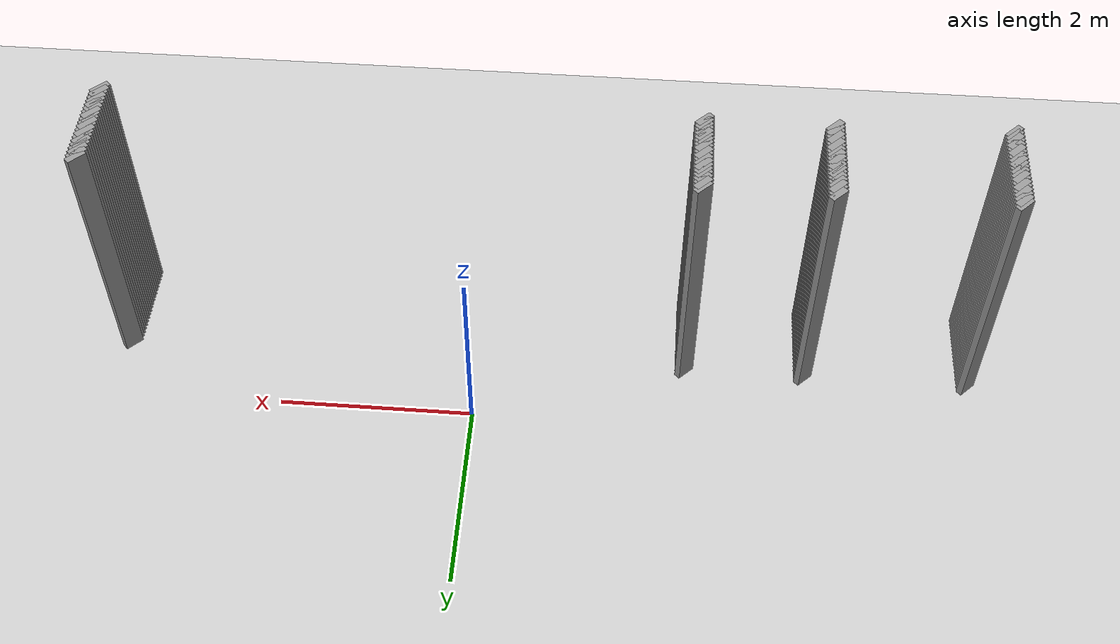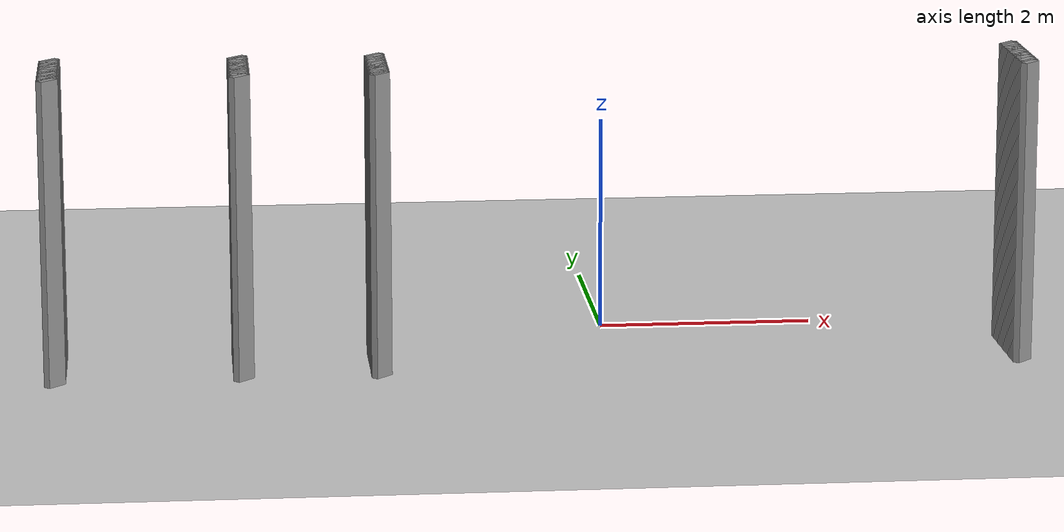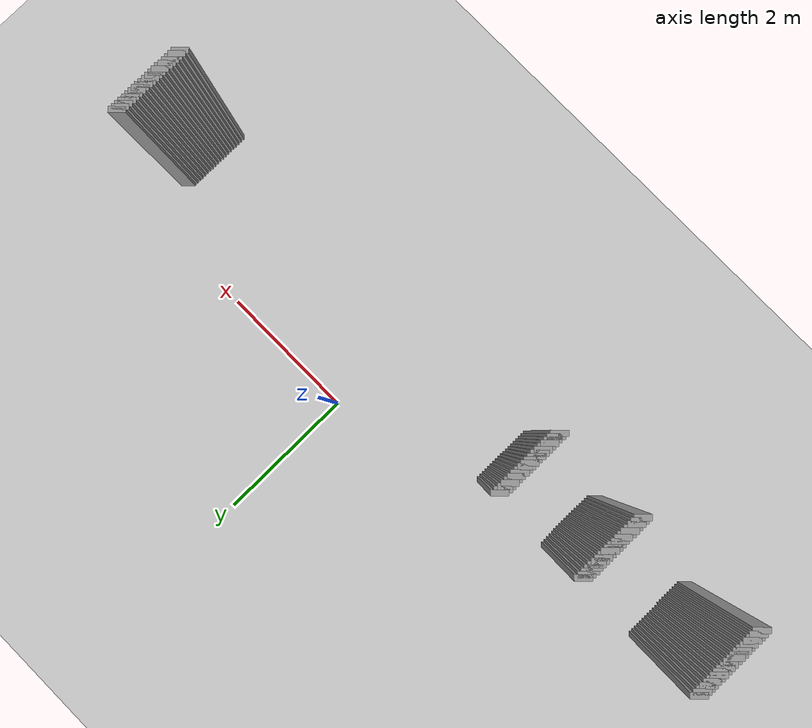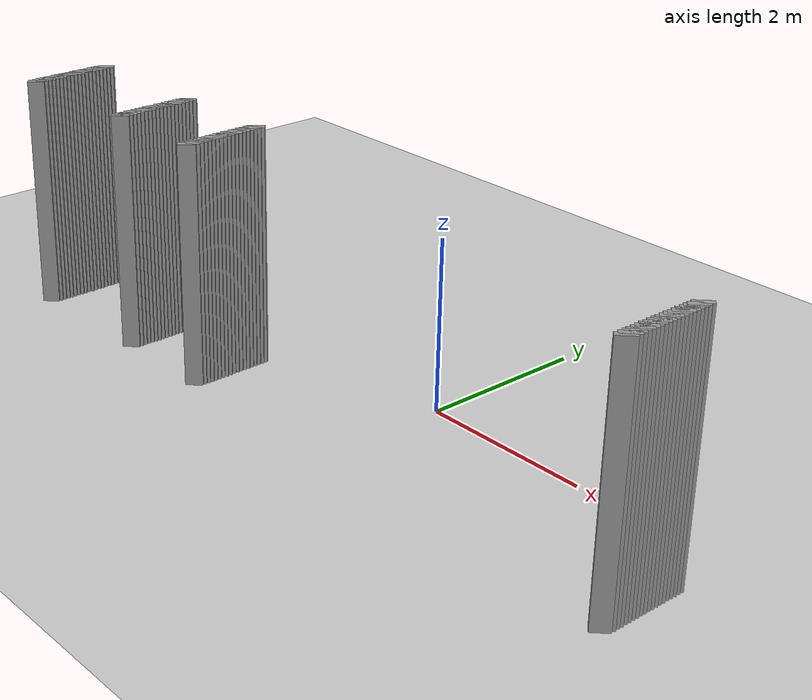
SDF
<sdf version="1.5">
 <world name="default">
  <include><uri>model://ground_plane</uri></include>
  <include><uri>model://sun</uri></include>
  <model name="grey_wall_944">
   <static>1</static>
   <link name="link">
    <pose>3.725 -0.675  1.4 0 0 -0.785398163397</pose>
    <collision name="collision"><geometry><box><size>0.0707106781187 .2  2.8</size></box></geometry></collision>
    <visual name="visual">
     <cast_shadows>0</cast_shadows>
     <geometry><box><size>0.0707106781187 .2  2.8</size></box></geometry>
     <material>
      <script>
       <uri>model://grey_wall/materials/scripts</uri>
       <uri>model://grey_wall/materials/textures</uri>
       <name>vrc/grey_wall</name>
      </script>
     </material>
    </visual>
   </link>
  </model>
  <model name="grey_wall_945">
   <static>1</static>
   <link name="link">
    <pose>-5.125 -0.725  1.4 0 0 -0.785398163397</pose>
    <collision name="collision"><geometry><box><size>0.0707106781187 .2  2.8</size></box></geometry></collision>
    <visual name="visual">
     <cast_shadows>0</cast_shadows>
     <geometry><box><size>0.0707106781187 .2  2.8</size></box></geometry>
     <material>
      <script>
       <uri>model://grey_wall/materials/scripts</uri>
       <uri>model://grey_wall/materials/textures</uri>
       <name>vrc/grey_wall</name>
      </script>
     </material>
    </visual>
   </link>
  </model>
  <model name="grey_wall_946">
   <static>1</static>
   <link name="link">
    <pose>-3.425 -0.725  1.4 0 0 -0.785398163397</pose>
    <collision name="collision"><geometry><box><size>0.0707106781187 .2  2.8</size></box></geometry></collision>
    <visual name="visual">
     <cast_shadows>0</cast_shadows>
     <geometry><box><size>0.0707106781187 .2  2.8</size></box></geometry>
     <material>
      <script>
       <uri>model://grey_wall/materials/scripts</uri>
       <uri>model://grey_wall/materials/textures</uri>
       <name>vrc/grey_wall</name>
      </script>
     </material>
    </visual>
   </link>
  </model>
  <model name="grey_wall_947">
   <static>1</static>
   <link name="link">
    <pose>-2.175 -0.725  1.4 0 0 -0.785398163397</pose>
    <collision name="collision"><geometry><box><size>0.0707106781187 .2  2.8</size></box></geometry></collision>
    <visual name="visual">
     <cast_shadows>0</cast_shadows>
     <geometry><box><size>0.0707106781187 .2  2.8</size></box></geometry>
     <material>
      <script>
       <uri>model://grey_wall/materials/scripts</uri>
       <uri>model://grey_wall/materials/textures</uri>
       <name>vrc/grey_wall</name>
      </script>
     </material>
    </visual>
   </link>
  </model>
  <model name="grey_wall_948">
   <static>1</static>
   <link name="link">
    <pose>3.725 -0.725  1.4 0 0 -0.785398163397</pose>
    <collision name="collision"><geometry><box><size>0.0707106781187 .2  2.8</size></box></geometry></collision>
    <visual name="visual">
     <cast_shadows>0</cast_shadows>
     <geometry><box><size>0.0707106781187 .2  2.8</size></box></geometry>
     <material>
      <script>
       <uri>model://grey_wall/materials/scripts</uri>
       <uri>model://grey_wall/materials/textures</uri>
       <name>vrc/grey_wall</name>
      </script>
     </material>
    </visual>
   </link>
  </model>
  <model name="grey_wall_949">
   <static>1</static>
   <link name="link">
    <pose>-5.125 -0.775  1.4 0 0 -0.785398163397</pose>
    <collision name="collision"><geometry><box><size>0.0707106781187 .2  2.8</size></box></geometry></collision>
    <visual name="visual">
     <cast_shadows>0</cast_shadows>
     <geometry><box><size>0.0707106781187 .2  2.8</size></box></geometry>
     <material>
      <script>
       <uri>model://grey_wall/materials/scripts</uri>
       <uri>model://grey_wall/materials/textures</uri>
       <name>vrc/grey_wall</name>
      </script>
     </material>
    </visual>
   </link>
  </model>
  <model name="grey_wall_950">
   <static>1</static>
   <link name="link">
    <pose>-3.425 -0.775  1.4 0 0 -0.785398163397</pose>
    <collision name="collision"><geometry><box><size>0.0707106781187 .2  2.8</size></box></geometry></collision>
    <visual name="visual">
     <cast_shadows>0</cast_shadows>
     <geometry><box><size>0.0707106781187 .2  2.8</size></box></geometry>
     <material>
      <script>
       <uri>model://grey_wall/materials/scripts</uri>
       <uri>model://grey_wall/materials/textures</uri>
       <name>vrc/grey_wall</name>
      </script>
     </material>
    </visual>
   </link>
  </model>
  <model name="grey_wall_951">
   <static>1</static>
   <link name="link">
    <pose>-2.175 -0.775  1.4 0 0 -0.785398163397</pose>
    <collision name="collision"><geometry><box><size>0.0707106781187 .2  2.8</size></box></geometry></collision>
    <visual name="visual">
     <cast_shadows>0</cast_shadows>
     <geometry><box><size>0.0707106781187 .2  2.8</size></box></geometry>
     <material>
      <script>
       <uri>model://grey_wall/materials/scripts</uri>
       <uri>model://grey_wall/materials/textures</uri>
       <name>vrc/grey_wall</name>
      </script>
     </material>
    </visual>
   </link>
  </model>
  <model name="grey_wall_952">
   <static>1</static>
   <link name="link">
    <pose>3.725 -0.775  1.4 0 0 -0.785398163397</pose>
    <collision name="collision"><geometry><box><size>0.0707106781187 .2  2.8</size></box></geometry></collision>
    <visual name="visual">
     <cast_shadows>0</cast_shadows>
     <geometry><box><size>0.0707106781187 .2  2.8</size></box></geometry>
     <material>
      <script>
       <uri>model://grey_wall/materials/scripts</uri>
       <uri>model://grey_wall/materials/textures</uri>
       <name>vrc/grey_wall</name>
      </script>
     </material>
    </visual>
   </link>
  </model>
  <model name="grey_wall_953">
   <static>1</static>
   <link name="link">
    <pose>-5.125 -0.825  1.4 0 0 -0.785398163397</pose>
    <collision name="collision"><geometry><box><size>0.0707106781187 .2  2.8</size></box></geometry></collision>
    <visual name="visual">
     <cast_shadows>0</cast_shadows>
     <geometry><box><size>0.0707106781187 .2  2.8</size></box></geometry>
     <material>
      <script>
       <uri>model://grey_wall/materials/scripts</uri>
       <uri>model://grey_wall/materials/textures</uri>
       <name>vrc/grey_wall</name>
      </script>
     </material>
    </visual>
   </link>
  </model>
  <model name="grey_wall_954">
   <static>1</static>
   <link name="link">
    <pose>-3.425 -0.825  1.4 0 0 -0.785398163397</pose>
    <collision name="collision"><geometry><box><size>0.0707106781187 .2  2.8</size></box></geometry></collision>
    <visual name="visual">
     <cast_shadows>0</cast_shadows>
     <geometry><box><size>0.0707106781187 .2  2.8</size></box></geometry>
     <material>
      <script>
       <uri>model://grey_wall/materials/scripts</uri>
       <uri>model://grey_wall/materials/textures</uri>
       <name>vrc/grey_wall</name>
      </script>
     </material>
    </visual>
   </link>
  </model>
  <model name="grey_wall_955">
   <static>1</static>
   <link name="link">
    <pose>-2.175 -0.825  1.4 0 0 -0.785398163397</pose>
    <collision name="collision"><geometry><box><size>0.0707106781187 .2  2.8</size></box></geometry></collision>
    <visual name="visual">
     <cast_shadows>0</cast_shadows>
     <geometry><box><size>0.0707106781187 .2  2.8</size></box></geometry>
     <material>
      <script>
       <uri>model://grey_wall/materials/scripts</uri>
       <uri>model://grey_wall/materials/textures</uri>
       <name>vrc/grey_wall</name>
      </script>
     </material>
    </visual>
   </link>
  </model>
  <model name="grey_wall_956">
   <static>1</static>
   <link name="link">
    <pose>3.725 -0.825  1.4 0 0 -0.785398163397</pose>
    <collision name="collision"><geometry><box><size>0.0707106781187 .2  2.8</size></box></geometry></collision>
    <visual name="visual">
     <cast_shadows>0</cast_shadows>
     <geometry><box><size>0.0707106781187 .2  2.8</size></box></geometry>
     <material>
      <script>
       <uri>model://grey_wall/materials/scripts</uri>
       <uri>model://grey_wall/materials/textures</uri>
       <name>vrc/grey_wall</name>
      </script>
     </material>
    </visual>
   </link>
  </model>
  <model name="grey_wall_957">
   <static>1</static>
   <link name="link">
    <pose>-5.125 -0.875  1.4 0 0 -0.785398163397</pose>
    <collision name="collision"><geometry><box><size>0.0707106781187 .2  2.8</size></box></geometry></collision>
    <visual name="visual">
     <cast_shadows>0</cast_shadows>
     <geometry><box><size>0.0707106781187 .2  2.8</size></box></geometry>
     <material>
      <script>
       <uri>model://grey_wall/materials/scripts</uri>
       <uri>model://grey_wall/materials/textures</uri>
       <name>vrc/grey_wall</name>
      </script>
     </material>
    </visual>
   </link>
  </model>
  <model name="grey_wall_958">
   <static>1</static>
   <link name="link">
    <pose>-3.425 -0.875  1.4 0 0 -0.785398163397</pose>
    <collision name="collision"><geometry><box><size>0.0707106781187 .2  2.8</size></box></geometry></collision>
    <visual name="visual">
     <cast_shadows>0</cast_shadows>
     <geometry><box><size>0.0707106781187 .2  2.8</size></box></geometry>
     <material>
      <script>
       <uri>model://grey_wall/materials/scripts</uri>
       <uri>model://grey_wall/materials/textures</uri>
       <name>vrc/grey_wall</name>
      </script>
     </material>
    </visual>
   </link>
  </model>
  <model name="grey_wall_959">
   <static>1</static>
   <link name="link">
    <pose>-2.175 -0.875  1.4 0 0 -0.785398163397</pose>
    <collision name="collision"><geometry><box><size>0.0707106781187 .2  2.8</size></box></geometry></collision>
    <visual name="visual">
     <cast_shadows>0</cast_shadows>
     <geometry><box><size>0.0707106781187 .2  2.8</size></box></geometry>
     <material>
      <script>
       <uri>model://grey_wall/materials/scripts</uri>
       <uri>model://grey_wall/materials/textures</uri>
       <name>vrc/grey_wall</name>
      </script>
     </material>
    </visual>
   </link>
  </model>
  <model name="grey_wall_960">
   <static>1</static>
   <link name="link">
    <pose>3.725 -0.875  1.4 0 0 -0.785398163397</pose>
    <collision name="collision"><geometry><box><size>0.0707106781187 .2  2.8</size></box></geometry></collision>
    <visual name="visual">
     <cast_shadows>0</cast_shadows>
     <geometry><box><size>0.0707106781187 .2  2.8</size></box></geometry>
     <material>
      <script>
       <uri>model://grey_wall/materials/scripts</uri>
       <uri>model://grey_wall/materials/textures</uri>
       <name>vrc/grey_wall</name>
      </script>
     </material>
    </visual>
   </link>
  </model>
  <model name="grey_wall_961">
   <static>1</static>
   <link name="link">
    <pose>-5.125 -0.925  1.4 0 0 -0.785398163397</pose>
    <collision name="collision"><geometry><box><size>0.0707106781187 .2  2.8</size></box></geometry></collision>
    <visual name="visual">
     <cast_shadows>0</cast_shadows>
     <geometry><box><size>0.0707106781187 .2  2.8</size></box></geometry>
     <material>
      <script>
       <uri>model://grey_wall/materials/scripts</uri>
       <uri>model://grey_wall/materials/textures</uri>
       <name>vrc/grey_wall</name>
      </script>
     </material>
    </visual>
   </link>
  </model>
  <model name="grey_wall_962">
   <static>1</static>
   <link name="link">
    <pose>-3.425 -0.925  1.4 0 0 -0.785398163397</pose>
    <collision name="collision"><geometry><box><size>0.0707106781187 .2  2.8</size></box></geometry></collision>
    <visual name="visual">
     <cast_shadows>0</cast_shadows>
     <geometry><box><size>0.0707106781187 .2  2.8</size></box></geometry>
     <material>
      <script>
       <uri>model://grey_wall/materials/scripts</uri>
       <uri>model://grey_wall/materials/textures</uri>
       <name>vrc/grey_wall</name>
      </script>
     </material>
    </visual>
   </link>
  </model>
  <model name="grey_wall_963">
   <static>1</static>
   <link name="link">
    <pose>-2.175 -0.925  1.4 0 0 -0.785398163397</pose>
    <collision name="collision"><geometry><box><size>0.0707106781187 .2  2.8</size></box></geometry></collision>
    <visual name="visual">
     <cast_shadows>0</cast_shadows>
     <geometry><box><size>0.0707106781187 .2  2.8</size></box></geometry>
     <material>
      <script>
       <uri>model://grey_wall/materials/scripts</uri>
       <uri>model://grey_wall/materials/textures</uri>
       <name>vrc/grey_wall</name>
      </script>
     </material>
    </visual>
   </link>
  </model>
  <model name="grey_wall_964">
   <static>1</static>
   <link name="link">
    <pose>3.725 -0.925  1.4 0 0 -0.785398163397</pose>
    <collision name="collision"><geometry><box><size>0.0707106781187 .2  2.8</size></box></geometry></collision>
    <visual name="visual">
     <cast_shadows>0</cast_shadows>
     <geometry><box><size>0.0707106781187 .2  2.8</size></box></geometry>
     <material>
      <script>
       <uri>model://grey_wall/materials/scripts</uri>
       <uri>model://grey_wall/materials/textures</uri>
       <name>vrc/grey_wall</name>
      </script>
     </material>
    </visual>
   </link>
  </model>
  <model name="grey_wall_965">
   <static>1</static>
   <link name="link">
    <pose>-5.125 -0.975  1.4 0 0 -0.785398163397</pose>
    <collision name="collision"><geometry><box><size>0.0707106781187 .2  2.8</size></box></geometry></collision>
    <visual name="visual">
     <cast_shadows>0</cast_shadows>
     <geometry><box><size>0.0707106781187 .2  2.8</size></box></geometry>
     <material>
      <script>
       <uri>model://grey_wall/materials/scripts</uri>
       <uri>model://grey_wall/materials/textures</uri>
       <name>vrc/grey_wall</name>
      </script>
     </material>
    </visual>
   </link>
  </model>
  <model name="grey_wall_966">
   <static>1</static>
   <link name="link">
    <pose>-3.425 -0.975  1.4 0 0 -0.785398163397</pose>
    <collision name="collision"><geometry><box><size>0.0707106781187 .2  2.8</size></box></geometry></collision>
    <visual name="visual">
     <cast_shadows>0</cast_shadows>
     <geometry><box><size>0.0707106781187 .2  2.8</size></box></geometry>
     <material>
      <script>
       <uri>model://grey_wall/materials/scripts</uri>
       <uri>model://grey_wall/materials/textures</uri>
       <name>vrc/grey_wall</name>
      </script>
     </material>
    </visual>
   </link>
  </model>
  <model name="grey_wall_967">
   <static>1</static>
   <link name="link">
    <pose>-2.175 -0.975  1.4 0 0 -0.785398163397</pose>
    <collision name="collision"><geometry><box><size>0.0707106781187 .2  2.8</size></box></geometry></collision>
    <visual name="visual">
     <cast_shadows>0</cast_shadows>
     <geometry><box><size>0.0707106781187 .2  2.8</size></box></geometry>
     <material>
      <script>
       <uri>model://grey_wall/materials/scripts</uri>
       <uri>model://grey_wall/materials/textures</uri>
       <name>vrc/grey_wall</name>
      </script>
     </material>
    </visual>
   </link>
  </model>
  <model name="grey_wall_968">
   <static>1</static>
   <link name="link">
    <pose>3.725 -0.975  1.4 0 0 -0.785398163397</pose>
    <collision name="collision"><geometry><box><size>0.0707106781187 .2  2.8</size></box></geometry></collision>
    <visual name="visual">
     <cast_shadows>0</cast_shadows>
     <geometry><box><size>0.0707106781187 .2  2.8</size></box></geometry>
     <material>
      <script>
       <uri>model://grey_wall/materials/scripts</uri>
       <uri>model://grey_wall/materials/textures</uri>
       <name>vrc/grey_wall</name>
      </script>
     </material>
    </visual>
   </link>
  </model>
  <model name="grey_wall_969">
   <static>1</static>
   <link name="link">
    <pose>-5.125 -1.025  1.4 0 0 -0.785398163397</pose>
    <collision name="collision"><geometry><box><size>0.0707106781187 .2  2.8</size></box></geometry></collision>
    <visual name="visual">
     <cast_shadows>0</cast_shadows>
     <geometry><box><size>0.0707106781187 .2  2.8</size></box></geometry>
     <material>
      <script>
       <uri>model://grey_wall/materials/scripts</uri>
       <uri>model://grey_wall/materials/textures</uri>
       <name>vrc/grey_wall</name>
      </script>
     </material>
    </visual>
   </link>
  </model>
  <model name="grey_wall_970">
   <static>1</static>
   <link name="link">
    <pose>-3.425 -1.025  1.4 0 0 -0.785398163397</pose>
    <collision name="collision"><geometry><box><size>0.0707106781187 .2  2.8</size></box></geometry></collision>
    <visual name="visual">
     <cast_shadows>0</cast_shadows>
     <geometry><box><size>0.0707106781187 .2  2.8</size></box></geometry>
     <material>
      <script>
       <uri>model://grey_wall/materials/scripts</uri>
       <uri>model://grey_wall/materials/textures</uri>
       <name>vrc/grey_wall</name>
      </script>
     </material>
    </visual>
   </link>
  </model>
  <model name="grey_wall_971">
   <static>1</static>
   <link name="link">
    <pose>-2.175 -1.025  1.4 0 0 -0.785398163397</pose>
    <collision name="collision"><geometry><box><size>0.0707106781187 .2  2.8</size></box></geometry></collision>
    <visual name="visual">
     <cast_shadows>0</cast_shadows>
     <geometry><box><size>0.0707106781187 .2  2.8</size></box></geometry>
     <material>
      <script>
       <uri>model://grey_wall/materials/scripts</uri>
       <uri>model://grey_wall/materials/textures</uri>
       <name>vrc/grey_wall</name>
      </script>
     </material>
    </visual>
   </link>
  </model>
  <model name="grey_wall_972">
   <static>1</static>
   <link name="link">
    <pose>3.725 -1.025  1.4 0 0 -0.785398163397</pose>
    <collision name="collision"><geometry><box><size>0.0707106781187 .2  2.8</size></box></geometry></collision>
    <visual name="visual">
     <cast_shadows>0</cast_shadows>
     <geometry><box><size>0.0707106781187 .2  2.8</size></box></geometry>
     <material>
      <script>
       <uri>model://grey_wall/materials/scripts</uri>
       <uri>model://grey_wall/materials/textures</uri>
       <name>vrc/grey_wall</name>
      </script>
     </material>
    </visual>
   </link>
  </model>
  <model name="grey_wall_973">
   <static>1</static>
   <link name="link">
    <pose>-5.125 -1.075  1.4 0 0 -0.785398163397</pose>
    <collision name="collision"><geometry><box><size>0.0707106781187 .2  2.8</size></box></geometry></collision>
    <visual name="visual">
     <cast_shadows>0</cast_shadows>
     <geometry><box><size>0.0707106781187 .2  2.8</size></box></geometry>
     <material>
      <script>
       <uri>model://grey_wall/materials/scripts</uri>
       <uri>model://grey_wall/materials/textures</uri>
       <name>vrc/grey_wall</name>
      </script>
     </material>
    </visual>
   </link>
  </model>
  <model name="grey_wall_974">
   <static>1</static>
   <link name="link">
    <pose>-3.425 -1.075  1.4 0 0 -0.785398163397</pose>
    <collision name="collision"><geometry><box><size>0.0707106781187 .2  2.8</size></box></geometry></collision>
    <visual name="visual">
     <cast_shadows>0</cast_shadows>
     <geometry><box><size>0.0707106781187 .2  2.8</size></box></geometry>
     <material>
      <script>
       <uri>model://grey_wall/materials/scripts</uri>
       <uri>model://grey_wall/materials/textures</uri>
       <name>vrc/grey_wall</name>
      </script>
     </material>
    </visual>
   </link>
  </model>
  <model name="grey_wall_975">
   <static>1</static>
   <link name="link">
    <pose>-2.175 -1.075  1.4 0 0 -0.785398163397</pose>
    <collision name="collision"><geometry><box><size>0.0707106781187 .2  2.8</size></box></geometry></collision>
    <visual name="visual">
     <cast_shadows>0</cast_shadows>
     <geometry><box><size>0.0707106781187 .2  2.8</size></box></geometry>
     <material>
      <script>
       <uri>model://grey_wall/materials/scripts</uri>
       <uri>model://grey_wall/materials/textures</uri>
       <name>vrc/grey_wall</name>
      </script>
     </material>
    </visual>
   </link>
  </model>
  <model name="grey_wall_976">
   <static>1</static>
   <link name="link">
    <pose>3.725 -1.075  1.4 0 0 -0.785398163397</pose>
    <collision name="collision"><geometry><box><size>0.0707106781187 .2  2.8</size></box></geometry></collision>
    <visual name="visual">
     <cast_shadows>0</cast_shadows>
     <geometry><box><size>0.0707106781187 .2  2.8</size></box></geometry>
     <material>
      <script>
       <uri>model://grey_wall/materials/scripts</uri>
       <uri>model://grey_wall/materials/textures</uri>
       <name>vrc/grey_wall</name>
      </script>
     </material>
    </visual>
   </link>
  </model>
  <model name="grey_wall_977">
   <static>1</static>
   <link name="link">
    <pose>-5.125 -1.125  1.4 0 0 -0.785398163397</pose>
    <collision name="collision"><geometry><box><size>0.0707106781187 .2  2.8</size></box></geometry></collision>
    <visual name="visual">
     <cast_shadows>0</cast_shadows>
     <geometry><box><size>0.0707106781187 .2  2.8</size></box></geometry>
     <material>
      <script>
       <uri>model://grey_wall/materials/scripts</uri>
       <uri>model://grey_wall/materials/textures</uri>
       <name>vrc/grey_wall</name>
      </script>
     </material>
    </visual>
   </link>
  </model>
  <model name="grey_wall_978">
   <static>1</static>
   <link name="link">
    <pose>-3.425 -1.125  1.4 0 0 -0.785398163397</pose>
    <collision name="collision"><geometry><box><size>0.0707106781187 .2  2.8</size></box></geometry></collision>
    <visual name="visual">
     <cast_shadows>0</cast_shadows>
     <geometry><box><size>0.0707106781187 .2  2.8</size></box></geometry>
     <material>
      <script>
       <uri>model://grey_wall/materials/scripts</uri>
       <uri>model://grey_wall/materials/textures</uri>
       <name>vrc/grey_wall</name>
      </script>
     </material>
    </visual>
   </link>
  </model>
  <model name="grey_wall_979">
   <static>1</static>
   <link name="link">
    <pose>-2.175 -1.125  1.4 0 0 -0.785398163397</pose>
    <collision name="collision"><geometry><box><size>0.0707106781187 .2  2.8</size></box></geometry></collision>
    <visual name="visual">
     <cast_shadows>0</cast_shadows>
     <geometry><box><size>0.0707106781187 .2  2.8</size></box></geometry>
     <material>
      <script>
       <uri>model://grey_wall/materials/scripts</uri>
       <uri>model://grey_wall/materials/textures</uri>
       <name>vrc/grey_wall</name>
      </script>
     </material>
    </visual>
   </link>
  </model>
  <model name="grey_wall_980">
   <static>1</static>
   <link name="link">
    <pose>3.725 -1.125  1.4 0 0 -0.785398163397</pose>
    <collision name="collision"><geometry><box><size>0.0707106781187 .2  2.8</size></box></geometry></collision>
    <visual name="visual">
     <cast_shadows>0</cast_shadows>
     <geometry><box><size>0.0707106781187 .2  2.8</size></box></geometry>
     <material>
      <script>
       <uri>model://grey_wall/materials/scripts</uri>
       <uri>model://grey_wall/materials/textures</uri>
       <name>vrc/grey_wall</name>
      </script>
     </material>
    </visual>
   </link>
  </model>
  <model name="grey_wall_981">
   <static>1</static>
   <link name="link">
    <pose>-5.125 -1.175  1.4 0 0 -0.785398163397</pose>
    <collision name="collision"><geometry><box><size>0.0707106781187 .2  2.8</size></box></geometry></collision>
    <visual name="visual">
     <cast_shadows>0</cast_shadows>
     <geometry><box><size>0.0707106781187 .2  2.8</size></box></geometry>
     <material>
      <script>
       <uri>model://grey_wall/materials/scripts</uri>
       <uri>model://grey_wall/materials/textures</uri>
       <name>vrc/grey_wall</name>
      </script>
     </material>
    </visual>
   </link>
  </model>
  <model name="grey_wall_982">
   <static>1</static>
   <link name="link">
    <pose>-3.425 -1.175  1.4 0 0 -0.785398163397</pose>
    <collision name="collision"><geometry><box><size>0.0707106781187 .2  2.8</size></box></geometry></collision>
    <visual name="visual">
     <cast_shadows>0</cast_shadows>
     <geometry><box><size>0.0707106781187 .2  2.8</size></box></geometry>
     <material>
      <script>
       <uri>model://grey_wall/materials/scripts</uri>
       <uri>model://grey_wall/materials/textures</uri>
       <name>vrc/grey_wall</name>
      </script>
     </material>
    </visual>
   </link>
  </model>
  <model name="grey_wall_983">
   <static>1</static>
   <link name="link">
    <pose>-2.175 -1.175  1.4 0 0 -0.785398163397</pose>
    <collision name="collision"><geometry><box><size>0.0707106781187 .2  2.8</size></box></geometry></collision>
    <visual name="visual">
     <cast_shadows>0</cast_shadows>
     <geometry><box><size>0.0707106781187 .2  2.8</size></box></geometry>
     <material>
      <script>
       <uri>model://grey_wall/materials/scripts</uri>
       <uri>model://grey_wall/materials/textures</uri>
       <name>vrc/grey_wall</name>
      </script>
     </material>
    </visual>
   </link>
  </model>
  <model name="grey_wall_984">
   <static>1</static>
   <link name="link">
    <pose>3.725 -1.175  1.4 0 0 -0.785398163397</pose>
    <collision name="collision"><geometry><box><size>0.0707106781187 .2  2.8</size></box></geometry></collision>
    <visual name="visual">
     <cast_shadows>0</cast_shadows>
     <geometry><box><size>0.0707106781187 .2  2.8</size></box></geometry>
     <material>
      <script>
       <uri>model://grey_wall/materials/scripts</uri>
       <uri>model://grey_wall/materials/textures</uri>
       <name>vrc/grey_wall</name>
      </script>
     </material>
    </visual>
   </link>
  </model>
  <model name="grey_wall_985">
   <static>1</static>
   <link name="link">
    <pose>-5.125 -1.225  1.4 0 0 -0.785398163397</pose>
    <collision name="collision"><geometry><box><size>0.0707106781187 .2  2.8</size></box></geometry></collision>
    <visual name="visual">
     <cast_shadows>0</cast_shadows>
     <geometry><box><size>0.0707106781187 .2  2.8</size></box></geometry>
     <material>
      <script>
       <uri>model://grey_wall/materials/scripts</uri>
       <uri>model://grey_wall/materials/textures</uri>
       <name>vrc/grey_wall</name>
      </script>
     </material>
    </visual>
   </link>
  </model>
  <model name="grey_wall_986">
   <static>1</static>
   <link name="link">
    <pose>-3.425 -1.225  1.4 0 0 -0.785398163397</pose>
    <collision name="collision"><geometry><box><size>0.0707106781187 .2  2.8</size></box></geometry></collision>
    <visual name="visual">
     <cast_shadows>0</cast_shadows>
     <geometry><box><size>0.0707106781187 .2  2.8</size></box></geometry>
     <material>
      <script>
       <uri>model://grey_wall/materials/scripts</uri>
       <uri>model://grey_wall/materials/textures</uri>
       <name>vrc/grey_wall</name>
      </script>
     </material>
    </visual>
   </link>
  </model>
  <model name="grey_wall_987">
   <static>1</static>
   <link name="link">
    <pose>-2.175 -1.225  1.4 0 0 -0.785398163397</pose>
    <collision name="collision"><geometry><box><size>0.0707106781187 .2  2.8</size></box></geometry></collision>
    <visual name="visual">
     <cast_shadows>0</cast_shadows>
     <geometry><box><size>0.0707106781187 .2  2.8</size></box></geometry>
     <material>
      <script>
       <uri>model://grey_wall/materials/scripts</uri>
       <uri>model://grey_wall/materials/textures</uri>
       <name>vrc/grey_wall</name>
      </script>
     </material>
    </visual>
   </link>
  </model>
  <model name="grey_wall_988">
   <static>1</static>
   <link name="link">
    <pose>3.725 -1.225  1.4 0 0 -0.785398163397</pose>
    <collision name="collision"><geometry><box><size>0.0707106781187 .2  2.8</size></box></geometry></collision>
    <visual name="visual">
     <cast_shadows>0</cast_shadows>
     <geometry><box><size>0.0707106781187 .2  2.8</size></box></geometry>
     <material>
      <script>
       <uri>model://grey_wall/materials/scripts</uri>
       <uri>model://grey_wall/materials/textures</uri>
       <name>vrc/grey_wall</name>
      </script>
     </material>
    </visual>
   </link>
  </model>
  <model name="grey_wall_989">
   <static>1</static>
   <link name="link">
    <pose>-5.125 -1.275  1.4 0 0 -0.785398163397</pose>
    <collision name="collision"><geometry><box><size>0.0707106781187 .2  2.8</size></box></geometry></collision>
    <visual name="visual">
     <cast_shadows>0</cast_shadows>
     <geometry><box><size>0.0707106781187 .2  2.8</size></box></geometry>
     <material>
      <script>
       <uri>model://grey_wall/materials/scripts</uri>
       <uri>model://grey_wall/materials/textures</uri>
       <name>vrc/grey_wall</name>
      </script>
     </material>
    </visual>
   </link>
  </model>
  <model name="grey_wall_990">
   <static>1</static>
   <link name="link">
    <pose>-3.425 -1.275  1.4 0 0 -0.785398163397</pose>
    <collision name="collision"><geometry><box><size>0.0707106781187 .2  2.8</size></box></geometry></collision>
    <visual name="visual">
     <cast_shadows>0</cast_shadows>
     <geometry><box><size>0.0707106781187 .2  2.8</size></box></geometry>
     <material>
      <script>
       <uri>model://grey_wall/materials/scripts</uri>
       <uri>model://grey_wall/materials/textures</uri>
       <name>vrc/grey_wall</name>
      </script>
     </material>
    </visual>
   </link>
  </model>
  <model name="grey_wall_991">
   <static>1</static>
   <link name="link">
    <pose>-2.175 -1.275  1.4 0 0 -0.785398163397</pose>
    <collision name="collision"><geometry><box><size>0.0707106781187 .2  2.8</size></box></geometry></collision>
    <visual name="visual">
     <cast_shadows>0</cast_shadows>
     <geometry><box><size>0.0707106781187 .2  2.8</size></box></geometry>
     <material>
      <script>
       <uri>model://grey_wall/materials/scripts</uri>
       <uri>model://grey_wall/materials/textures</uri>
       <name>vrc/grey_wall</name>
      </script>
     </material>
    </visual>
   </link>
  </model>
  <model name="grey_wall_992">
   <static>1</static>
   <link name="link">
    <pose>3.725 -1.275  1.4 0 0 -0.785398163397</pose>
    <collision name="collision"><geometry><box><size>0.0707106781187 .2  2.8</size></box></geometry></collision>
    <visual name="visual">
     <cast_shadows>0</cast_shadows>
     <geometry><box><size>0.0707106781187 .2  2.8</size></box></geometry>
     <material>
      <script>
       <uri>model://grey_wall/materials/scripts</uri>
       <uri>model://grey_wall/materials/textures</uri>
       <name>vrc/grey_wall</name>
      </script>
     </material>
    </visual>
   </link>
  </model>
  <model name="grey_wall_993">
   <static>1</static>
   <link name="link">
    <pose>-5.125 -1.325  1.4 0 0 -0.785398163397</pose>
    <collision name="collision"><geometry><box><size>0.0707106781187 .2  2.8</size></box></geometry></collision>
    <visual name="visual">
     <cast_shadows>0</cast_shadows>
     <geometry><box><size>0.0707106781187 .2  2.8</size></box></geometry>
     <material>
      <script>
       <uri>model://grey_wall/materials/scripts</uri>
       <uri>model://grey_wall/materials/textures</uri>
       <name>vrc/grey_wall</name>
      </script>
     </material>
    </visual>
   </link>
  </model>
  <model name="grey_wall_994">
   <static>1</static>
   <link name="link">
    <pose>-3.425 -1.325  1.4 0 0 -0.785398163397</pose>
    <collision name="collision"><geometry><box><size>0.0707106781187 .2  2.8</size></box></geometry></collision>
    <visual name="visual">
     <cast_shadows>0</cast_shadows>
     <geometry><box><size>0.0707106781187 .2  2.8</size></box></geometry>
     <material>
      <script>
       <uri>model://grey_wall/materials/scripts</uri>
       <uri>model://grey_wall/materials/textures</uri>
       <name>vrc/grey_wall</name>
      </script>
     </material>
    </visual>
   </link>
  </model>
  <model name="grey_wall_995">
   <static>1</static>
   <link name="link">
    <pose>-2.175 -1.325  1.4 0 0 -0.785398163397</pose>
    <collision name="collision"><geometry><box><size>0.0707106781187 .2  2.8</size></box></geometry></collision>
    <visual name="visual">
     <cast_shadows>0</cast_shadows>
     <geometry><box><size>0.0707106781187 .2  2.8</size></box></geometry>
     <material>
      <script>
       <uri>model://grey_wall/materials/scripts</uri>
       <uri>model://grey_wall/materials/textures</uri>
       <name>vrc/grey_wall</name>
      </script>
     </material>
    </visual>
   </link>
  </model>
  <model name="grey_wall_996">
   <static>1</static>
   <link name="link">
    <pose>3.725 -1.325  1.4 0 0 -0.785398163397</pose>
    <collision name="collision"><geometry><box><size>0.0707106781187 .2  2.8</size></box></geometry></collision>
    <visual name="visual">
     <cast_shadows>0</cast_shadows>
     <geometry><box><size>0.0707106781187 .2  2.8</size></box></geometry>
     <material>
      <script>
       <uri>model://grey_wall/materials/scripts</uri>
       <uri>model://grey_wall/materials/textures</uri>
       <name>vrc/grey_wall</name>
      </script>
     </material>
    </visual>
   </link>
  </model>
  <model name="grey_wall_997">
   <static>1</static>
   <link name="link">
    <pose>-5.125 -1.375  1.4 0 0 -0.785398163397</pose>
    <collision name="collision"><geometry><box><size>0.0707106781187 .2  2.8</size></box></geometry></collision>
    <visual name="visual">
     <cast_shadows>0</cast_shadows>
     <geometry><box><size>0.0707106781187 .2  2.8</size></box></geometry>
     <material>
      <script>
       <uri>model://grey_wall/materials/scripts</uri>
       <uri>model://grey_wall/materials/textures</uri>
       <name>vrc/grey_wall</name>
      </script>
     </material>
    </visual>
   </link>
  </model>
  <model name="grey_wall_998">
   <static>1</static>
   <link name="link">
    <pose>-3.425 -1.375  1.4 0 0 -0.785398163397</pose>
    <collision name="collision"><geometry><box><size>0.0707106781187 .2  2.8</size></box></geometry></collision>
    <visual name="visual">
     <cast_shadows>0</cast_shadows>
     <geometry><box><size>0.0707106781187 .2  2.8</size></box></geometry>
     <material>
      <script>
       <uri>model://grey_wall/materials/scripts</uri>
       <uri>model://grey_wall/materials/textures</uri>
       <name>vrc/grey_wall</name>
      </script>
     </material>
    </visual>
   </link>
  </model>
  <model name="grey_wall_999">
   <static>1</static>
   <link name="link">
    <pose>-2.175 -1.375  1.4 0 0 -0.785398163397</pose>
    <collision name="collision"><geometry><box><size>0.0707106781187 .2  2.8</size></box></geometry></collision>
    <visual name="visual">
     <cast_shadows>0</cast_shadows>
     <geometry><box><size>0.0707106781187 .2  2.8</size></box></geometry>
     <material>
      <script>
       <uri>model://grey_wall/materials/scripts</uri>
       <uri>model://grey_wall/materials/textures</uri>
       <name>vrc/grey_wall</name>
      </script>
     </material>
    </visual>
   </link>
  </model>
  <model name="grey_wall_1000">
   <static>1</static>
   <link name="link">
    <pose>3.725 -1.375  1.4 0 0 -0.785398163397</pose>
    <collision name="collision"><geometry><box><size>0.0707106781187 .2  2.8</size></box></geometry></collision>
    <visual name="visual">
     <cast_shadows>0</cast_shadows>
     <geometry><box><size>0.0707106781187 .2  2.8</size></box></geometry>
     <material>
      <script>
       <uri>model://grey_wall/materials/scripts</uri>
       <uri>model://grey_wall/materials/textures</uri>
       <name>vrc/grey_wall</name>
      </script>
     </material>
    </visual>
   </link>
  </model>
  <model name="grey_wall_1001">
   <static>1</static>
   <link name="link">
    <pose>-5.125 -1.425  1.4 0 0 -0.785398163397</pose>
    <collision name="collision"><geometry><box><size>0.0707106781187 .2  2.8</size></box></geometry></collision>
    <visual name="visual">
     <cast_shadows>0</cast_shadows>
     <geometry><box><size>0.0707106781187 .2  2.8</size></box></geometry>
     <material>
      <script>
       <uri>model://grey_wall/materials/scripts</uri>
       <uri>model://grey_wall/materials/textures</uri>
       <name>vrc/grey_wall</name>
      </script>
     </material>
    </visual>
   </link>
  </model>
  <model name="grey_wall_1002">
   <static>1</static>
   <link name="link">
    <pose>-3.425 -1.425  1.4 0 0 -0.785398163397</pose>
    <collision name="collision"><geometry><box><size>0.0707106781187 .2  2.8</size></box></geometry></collision>
    <visual name="visual">
     <cast_shadows>0</cast_shadows>
     <geometry><box><size>0.0707106781187 .2  2.8</size></box></geometry>
     <material>
      <script>
       <uri>model://grey_wall/materials/scripts</uri>
       <uri>model://grey_wall/materials/textures</uri>
       <name>vrc/grey_wall</name>
      </script>
     </material>
    </visual>
   </link>
  </model>
  <model name="grey_wall_1003">
   <static>1</static>
   <link name="link">
    <pose>-2.175 -1.425  1.4 0 0 -0.785398163397</pose>
    <collision name="collision"><geometry><box><size>0.0707106781187 .2  2.8</size></box></geometry></collision>
    <visual name="visual">
     <cast_shadows>0</cast_shadows>
     <geometry><box><size>0.0707106781187 .2  2.8</size></box></geometry>
     <material>
      <script>
       <uri>model://grey_wall/materials/scripts</uri>
       <uri>model://grey_wall/materials/textures</uri>
       <name>vrc/grey_wall</name>
      </script>
     </material>
    </visual>
   </link>
  </model>
  <model name="grey_wall_1004">
   <static>1</static>
   <link name="link">
    <pose>3.725 -1.425  1.4 0 0 -0.785398163397</pose>
    <collision name="collision"><geometry><box><size>0.0707106781187 .2  2.8</size></box></geometry></collision>
    <visual name="visual">
     <cast_shadows>0</cast_shadows>
     <geometry><box><size>0.0707106781187 .2  2.8</size></box></geometry>
     <material>
      <script>
       <uri>model://grey_wall/materials/scripts</uri>
       <uri>model://grey_wall/materials/textures</uri>
       <name>vrc/grey_wall</name>
      </script>
     </material>
    </visual>
   </link>
  </model>
  <model name="grey_wall_1005">
   <static>1</static>
   <link name="link">
    <pose>-5.125 -1.475  1.4 0 0 -0.785398163397</pose>
    <collision name="collision"><geometry><box><size>0.0707106781187 .2  2.8</size></box></geometry></collision>
    <visual name="visual">
     <cast_shadows>0</cast_shadows>
     <geometry><box><size>0.0707106781187 .2  2.8</size></box></geometry>
     <material>
      <script>
       <uri>model://grey_wall/materials/scripts</uri>
       <uri>model://grey_wall/materials/textures</uri>
       <name>vrc/grey_wall</name>
      </script>
     </material>
    </visual>
   </link>
  </model>
  <model name="grey_wall_1006">
   <static>1</static>
   <link name="link">
    <pose>-3.425 -1.475  1.4 0 0 -0.785398163397</pose>
    <collision name="collision"><geometry><box><size>0.0707106781187 .2  2.8</size></box></geometry></collision>
    <visual name="visual">
     <cast_shadows>0</cast_shadows>
     <geometry><box><size>0.0707106781187 .2  2.8</size></box></geometry>
     <material>
      <script>
       <uri>model://grey_wall/materials/scripts</uri>
       <uri>model://grey_wall/materials/textures</uri>
       <name>vrc/grey_wall</name>
      </script>
     </material>
    </visual>
   </link>
  </model>
  <model name="grey_wall_1007">
   <static>1</static>
   <link name="link">
    <pose>-2.175 -1.475  1.4 0 0 -0.785398163397</pose>
    <collision name="collision"><geometry><box><size>0.0707106781187 .2  2.8</size></box></geometry></collision>
    <visual name="visual">
     <cast_shadows>0</cast_shadows>
     <geometry><box><size>0.0707106781187 .2  2.8</size></box></geometry>
     <material>
      <script>
       <uri>model://grey_wall/materials/scripts</uri>
       <uri>model://grey_wall/materials/textures</uri>
       <name>vrc/grey_wall</name>
      </script>
     </material>
    </visual>
   </link>
  </model>
  <model name="grey_wall_1008">
   <static>1</static>
   <link name="link">
    <pose>3.725 -1.475  1.4 0 0 -0.785398163397</pose>
    <collision name="collision"><geometry><box><size>0.0707106781187 .2  2.8</size></box></geometry></collision>
    <visual name="visual">
     <cast_shadows>0</cast_shadows>
     <geometry><box><size>0.0707106781187 .2  2.8</size></box></geometry>
     <material>
      <script>
       <uri>model://grey_wall/materials/scripts</uri>
       <uri>model://grey_wall/materials/textures</uri>
       <name>vrc/grey_wall</name>
      </script>
     </material>
    </visual>
   </link>
  </model>
  <model name="grey_wall_1009">
   <static>1</static>
   <link name="link">
    <pose>-5.125 -1.525  1.4 0 0 -0.785398163397</pose>
    <collision name="collision"><geometry><box><size>0.0707106781187 .2  2.8</size></box></geometry></collision>
    <visual name="visual">
     <cast_shadows>0</cast_shadows>
     <geometry><box><size>0.0707106781187 .2  2.8</size></box></geometry>
     <material>
      <script>
       <uri>model://grey_wall/materials/scripts</uri>
       <uri>model://grey_wall/materials/textures</uri>
       <name>vrc/grey_wall</name>
      </script>
     </material>
    </visual>
   </link>
  </model>
  <model name="grey_wall_1010">
   <static>1</static>
   <link name="link">
    <pose>-3.425 -1.525  1.4 0 0 -0.785398163397</pose>
    <collision name="collision"><geometry><box><size>0.0707106781187 .2  2.8</size></box></geometry></collision>
    <visual name="visual">
     <cast_shadows>0</cast_shadows>
     <geometry><box><size>0.0707106781187 .2  2.8</size></box></geometry>
     <material>
      <script>
       <uri>model://grey_wall/materials/scripts</uri>
       <uri>model://grey_wall/materials/textures</uri>
       <name>vrc/grey_wall</name>
      </script>
     </material>
    </visual>
   </link>
  </model>
  <model name="grey_wall_1011">
   <static>1</static>
   <link name="link">
    <pose>-2.175 -1.525  1.4 0 0 -0.785398163397</pose>
    <collision name="collision"><geometry><box><size>0.0707106781187 .2  2.8</size></box></geometry></collision>
    <visual name="visual">
     <cast_shadows>0</cast_shadows>
     <geometry><box><size>0.0707106781187 .2  2.8</size></box></geometry>
     <material>
      <script>
       <uri>model://grey_wall/materials/scripts</uri>
       <uri>model://grey_wall/materials/textures</uri>
       <name>vrc/grey_wall</name>
      </script>
     </material>
    </visual>
   </link>
  </model>
  <model name="grey_wall_1012">
   <static>1</static>
   <link name="link">
    <pose>3.725 -1.525  1.4 0 0 -0.785398163397</pose>
    <collision name="collision"><geometry><box><size>0.0707106781187 .2  2.8</size></box></geometry></collision>
    <visual name="visual">
     <cast_shadows>0</cast_shadows>
     <geometry><box><size>0.0707106781187 .2  2.8</size></box></geometry>
     <material>
      <script>
       <uri>model://grey_wall/materials/scripts</uri>
       <uri>model://grey_wall/materials/textures</uri>
       <name>vrc/grey_wall</name>
      </script>
     </material>
    </visual>
   </link>
  </model>
  <model name="grey_wall_1013">
   <static>1</static>
   <link name="link">
    <pose>-5.125 -1.575  1.4 0 0 -0.785398163397</pose>
    <collision name="collision"><geometry><box><size>0.0707106781187 .2  2.8</size></box></geometry></collision>
    <visual name="visual">
     <cast_shadows>0</cast_shadows>
     <geometry><box><size>0.0707106781187 .2  2.8</size></box></geometry>
     <material>
      <script>
       <uri>model://grey_wall/materials/scripts</uri>
       <uri>model://grey_wall/materials/textures</uri>
       <name>vrc/grey_wall</name>
      </script>
     </material>
    </visual>
   </link>
  </model>
  <model name="grey_wall_1014">
   <static>1</static>
   <link name="link">
    <pose>-3.425 -1.575  1.4 0 0 -0.785398163397</pose>
    <collision name="collision"><geometry><box><size>0.0707106781187 .2  2.8</size></box></geometry></collision>
    <visual name="visual">
     <cast_shadows>0</cast_shadows>
     <geometry><box><size>0.0707106781187 .2  2.8</size></box></geometry>
     <material>
      <script>
       <uri>model://grey_wall/materials/scripts</uri>
       <uri>model://grey_wall/materials/textures</uri>
       <name>vrc/grey_wall</name>
      </script>
     </material>
    </visual>
   </link>
  </model>
  <model name="grey_wall_1015">
   <static>1</static>
   <link name="link">
    <pose>-2.175 -1.575  1.4 0 0 -0.785398163397</pose>
    <collision name="collision"><geometry><box><size>0.0707106781187 .2  2.8</size></box></geometry></collision>
    <visual name="visual">
     <cast_shadows>0</cast_shadows>
     <geometry><box><size>0.0707106781187 .2  2.8</size></box></geometry>
     <material>
      <script>
       <uri>model://grey_wall/materials/scripts</uri>
       <uri>model://grey_wall/materials/textures</uri>
       <name>vrc/grey_wall</name>
      </script>
     </material>
    </visual>
   </link>
  </model>
  <model name="grey_wall_1016">
   <static>1</static>
   <link name="link">
    <pose>3.725 -1.575  1.4 0 0 -0.785398163397</pose>
    <collision name="collision"><geometry><box><size>0.0707106781187 .2  2.8</size></box></geometry></collision>
    <visual name="visual">
     <cast_shadows>0</cast_shadows>
     <geometry><box><size>0.0707106781187 .2  2.8</size></box></geometry>
     <material>
      <script>
       <uri>model://grey_wall/materials/scripts</uri>
       <uri>model://grey_wall/materials/textures</uri>
       <name>vrc/grey_wall</name>
      </script>
     </material>
    </visual>
   </link>
  </model>
  <model name="grey_wall_1017">
   <static>1</static>
   <link name="link">
    <pose>-5.125 -1.625  1.4 0 0 -0.785398163397</pose>
    <collision name="collision"><geometry><box><size>0.0707106781187 .2  2.8</size></box></geometry></collision>
    <visual name="visual">
     <cast_shadows>0</cast_shadows>
     <geometry><box><size>0.0707106781187 .2  2.8</size></box></geometry>
     <material>
      <script>
       <uri>model://grey_wall/materials/scripts</uri>
       <uri>model://grey_wall/materials/textures</uri>
       <name>vrc/grey_wall</name>
      </script>
     </material>
    </visual>
   </link>
  </model>
  <model name="grey_wall_1018">
   <static>1</static>
   <link name="link">
    <pose>-3.425 -1.625  1.4 0 0 -0.785398163397</pose>
    <collision name="collision"><geometry><box><size>0.0707106781187 .2  2.8</size></box></geometry></collision>
    <visual name="visual">
     <cast_shadows>0</cast_shadows>
     <geometry><box><size>0.0707106781187 .2  2.8</size></box></geometry>
     <material>
      <script>
       <uri>model://grey_wall/materials/scripts</uri>
       <uri>model://grey_wall/materials/textures</uri>
       <name>vrc/grey_wall</name>
      </script>
     </material>
    </visual>
   </link>
  </model>
  <model name="grey_wall_1019">
   <static>1</static>
   <link name="link">
    <pose>-2.175 -1.625  1.4 0 0 -0.785398163397</pose>
    <collision name="collision"><geometry><box><size>0.0707106781187 .2  2.8</size></box></geometry></collision>
    <visual name="visual">
     <cast_shadows>0</cast_shadows>
     <geometry><box><size>0.0707106781187 .2  2.8</size></box></geometry>
     <material>
      <script>
       <uri>model://grey_wall/materials/scripts</uri>
       <uri>model://grey_wall/materials/textures</uri>
       <name>vrc/grey_wall</name>
      </script>
     </material>
    </visual>
   </link>
  </model>
  <model name="grey_wall_1020">
   <static>1</static>
   <link name="link">
    <pose>3.725 -1.625  1.4 0 0 -0.785398163397</pose>
    <collision name="collision"><geometry><box><size>0.0707106781187 .2  2.8</size></box></geometry></collision>
    <visual name="visual">
     <cast_shadows>0</cast_shadows>
     <geometry><box><size>0.0707106781187 .2  2.8</size></box></geometry>
     <material>
      <script>
       <uri>model://grey_wall/materials/scripts</uri>
       <uri>model://grey_wall/materials/textures</uri>
       <name>vrc/grey_wall</name>
      </script>
     </material>
    </visual>
   </link>
  </model>
  <model name="grey_wall_1021">
   <static>1</static>
   <link name="link">
    <pose>-5.125 -1.675  1.4 0 0 -0.785398163397</pose>
    <collision name="collision"><geometry><box><size>0.0707106781187 .2  2.8</size></box></geometry></collision>
    <visual name="visual">
     <cast_shadows>0</cast_shadows>
     <geometry><box><size>0.0707106781187 .2  2.8</size></box></geometry>
     <material>
      <script>
       <uri>model://grey_wall/materials/scripts</uri>
       <uri>model://grey_wall/materials/textures</uri>
       <name>vrc/grey_wall</name>
      </script>
     </material>
    </visual>
   </link>
  </model>
 </world>
</sdf>
